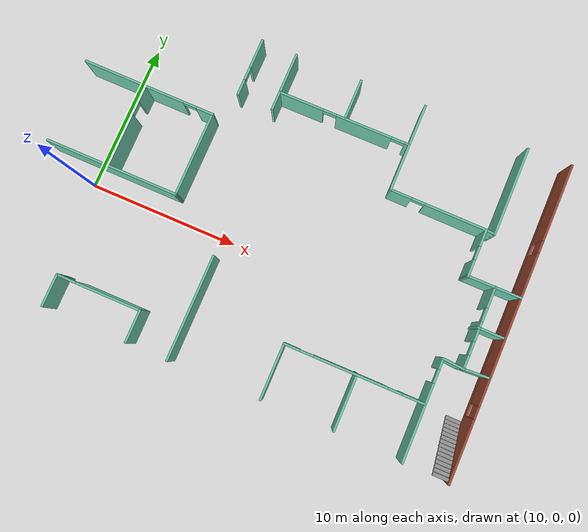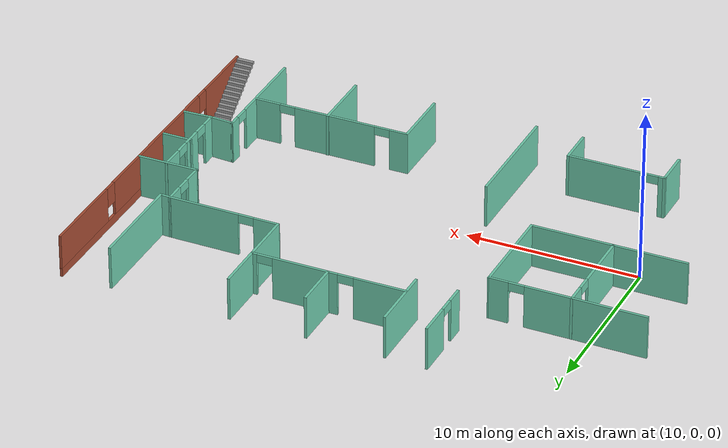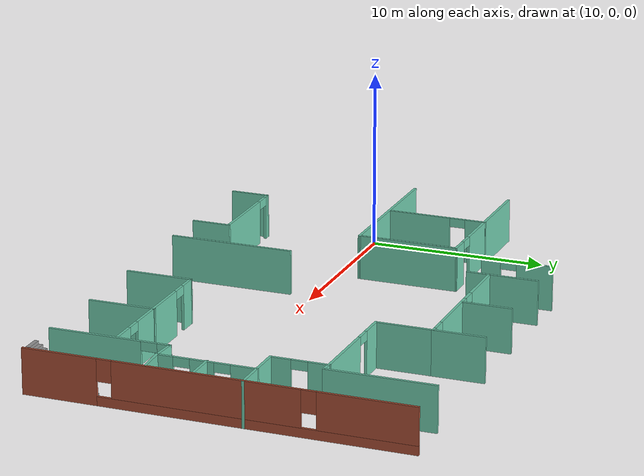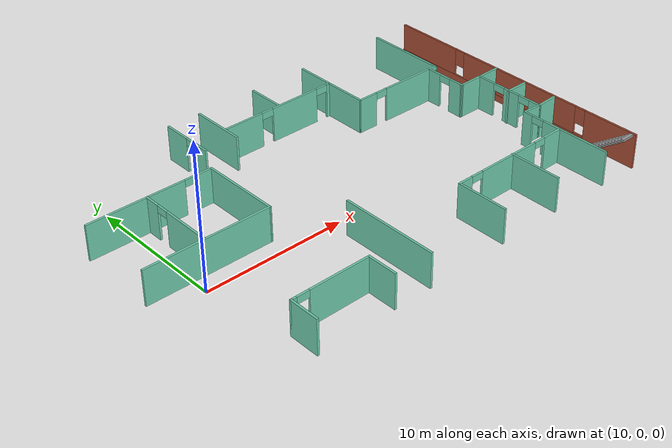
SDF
<sdf version="1.7">
 <model name="building">
  <pose>10.6748 2.21075 0 0 -0 0</pose>
  <link name="Stairs_1">
   <visual name="Stairs_1_Visual_0">
    <pose>26.4663 -7.00281 0.083333 0 -0 0</pose>
    <geometry><box><size>1 0.233333 0.166667</size></box></geometry>
    <material>
     <script><uri>file://media/materials/scripts/gazebo.material</uri><name>Gazebo/Grey</name></script>
     <ambient>0 0 0 1</ambient>
    </material>
    <meta><layer>0</layer></meta>
   </visual>
   <collision name="Stairs_1_Collision_0">
    <geometry><box><size>1 0.233333 0.166667</size></box></geometry>
    <pose>26.4663 -7.00281 0.083333 0 -0 0</pose>
   </collision>
   <visual name="Stairs_1_Visual_1">
    <pose>26.4663 -7.23614 0.25 0 -0 0</pose>
    <geometry><box><size>1 0.233333 0.166667</size></box></geometry>
    <material>
     <script><uri>file://media/materials/scripts/gazebo.material</uri><name>Gazebo/Grey</name></script>
     <ambient>0 0 0 1</ambient>
    </material>
    <meta><layer>0</layer></meta>
   </visual>
   <collision name="Stairs_1_Collision_1">
    <geometry><box><size>1 0.233333 0.166667</size></box></geometry>
    <pose>26.4663 -7.23614 0.25 0 -0 0</pose>
   </collision>
   <visual name="Stairs_1_Visual_2">
    <pose>26.4663 -7.46948 0.416667 0 -0 0</pose>
    <geometry><box><size>1 0.233333 0.166667</size></box></geometry>
    <material>
     <script><uri>file://media/materials/scripts/gazebo.material</uri><name>Gazebo/Grey</name></script>
     <ambient>0 0 0 1</ambient>
    </material>
    <meta><layer>0</layer></meta>
   </visual>
   <collision name="Stairs_1_Collision_2">
    <geometry><box><size>1 0.233333 0.166667</size></box></geometry>
    <pose>26.4663 -7.46948 0.416667 0 -0 0</pose>
   </collision>
   <visual name="Stairs_1_Visual_3">
    <pose>26.4663 -7.70281 0.583333 0 -0 0</pose>
    <geometry><box><size>1 0.233333 0.166667</size></box></geometry>
    <material>
     <script><uri>file://media/materials/scripts/gazebo.material</uri><name>Gazebo/Grey</name></script>
     <ambient>0 0 0 1</ambient>
    </material>
    <meta><layer>0</layer></meta>
   </visual>
   <collision name="Stairs_1_Collision_3">
    <geometry><box><size>1 0.233333 0.166667</size></box></geometry>
    <pose>26.4663 -7.70281 0.583333 0 -0 0</pose>
   </collision>
   <visual name="Stairs_1_Visual_4">
    <pose>26.4663 -7.93614 0.75 0 -0 0</pose>
    <geometry><box><size>1 0.233333 0.166667</size></box></geometry>
    <material>
     <script><uri>file://media/materials/scripts/gazebo.material</uri><name>Gazebo/Grey</name></script>
     <ambient>0 0 0 1</ambient>
    </material>
    <meta><layer>0</layer></meta>
   </visual>
   <collision name="Stairs_1_Collision_4">
    <geometry><box><size>1 0.233333 0.166667</size></box></geometry>
    <pose>26.4663 -7.93614 0.75 0 -0 0</pose>
   </collision>
   <visual name="Stairs_1_Visual_5">
    <pose>26.4663 -8.16948 0.916667 0 -0 0</pose>
    <geometry><box><size>1 0.233333 0.166667</size></box></geometry>
    <material>
     <script><uri>file://media/materials/scripts/gazebo.material</uri><name>Gazebo/Grey</name></script>
     <ambient>0 0 0 1</ambient>
    </material>
    <meta><layer>0</layer></meta>
   </visual>
   <collision name="Stairs_1_Collision_5">
    <geometry><box><size>1 0.233333 0.166667</size></box></geometry>
    <pose>26.4663 -8.16948 0.916667 0 -0 0</pose>
   </collision>
   <visual name="Stairs_1_Visual_6">
    <pose>26.4663 -8.40281 1.08333 0 -0 0</pose>
    <geometry><box><size>1 0.233333 0.166667</size></box></geometry>
    <material>
     <script><uri>file://media/materials/scripts/gazebo.material</uri><name>Gazebo/Grey</name></script>
     <ambient>0 0 0 1</ambient>
    </material>
    <meta><layer>0</layer></meta>
   </visual>
   <collision name="Stairs_1_Collision_6">
    <geometry><box><size>1 0.233333 0.166667</size></box></geometry>
    <pose>26.4663 -8.40281 1.08333 0 -0 0</pose>
   </collision>
   <visual name="Stairs_1_Visual_7">
    <pose>26.4663 -8.63614 1.25 0 -0 0</pose>
    <geometry><box><size>1 0.233333 0.166667</size></box></geometry>
    <material>
     <script><uri>file://media/materials/scripts/gazebo.material</uri><name>Gazebo/Grey</name></script>
     <ambient>0 0 0 1</ambient>
    </material>
    <meta><layer>0</layer></meta>
   </visual>
   <collision name="Stairs_1_Collision_7">
    <geometry><box><size>1 0.233333 0.166667</size></box></geometry>
    <pose>26.4663 -8.63614 1.25 0 -0 0</pose>
   </collision>
   <visual name="Stairs_1_Visual_8">
    <pose>26.4663 -8.86948 1.41667 0 -0 0</pose>
    <geometry><box><size>1 0.233333 0.166667</size></box></geometry>
    <material>
     <script><uri>file://media/materials/scripts/gazebo.material</uri><name>Gazebo/Grey</name></script>
     <ambient>0 0 0 1</ambient>
    </material>
    <meta><layer>0</layer></meta>
   </visual>
   <collision name="Stairs_1_Collision_8">
    <geometry><box><size>1 0.233333 0.166667</size></box></geometry>
    <pose>26.4663 -8.86948 1.41667 0 -0 0</pose>
   </collision>
   <visual name="Stairs_1_Visual_9">
    <pose>26.4663 -9.10281 1.58333 0 -0 0</pose>
    <geometry><box><size>1 0.233333 0.166667</size></box></geometry>
    <material>
     <script><uri>file://media/materials/scripts/gazebo.material</uri><name>Gazebo/Grey</name></script>
     <ambient>0 0 0 1</ambient>
    </material>
    <meta><layer>0</layer></meta>
   </visual>
   <collision name="Stairs_1_Collision_9">
    <geometry><box><size>1 0.233333 0.166667</size></box></geometry>
    <pose>26.4663 -9.10281 1.58333 0 -0 0</pose>
   </collision>
   <visual name="Stairs_1_Visual_10">
    <pose>26.4663 -9.33614 1.75 0 -0 0</pose>
    <geometry><box><size>1 0.233333 0.166667</size></box></geometry>
    <material>
     <script><uri>file://media/materials/scripts/gazebo.material</uri><name>Gazebo/Grey</name></script>
     <ambient>0 0 0 1</ambient>
    </material>
    <meta><layer>0</layer></meta>
   </visual>
   <collision name="Stairs_1_Collision_10">
    <geometry><box><size>1 0.233333 0.166667</size></box></geometry>
    <pose>26.4663 -9.33614 1.75 0 -0 0</pose>
   </collision>
   <visual name="Stairs_1_Visual_11">
    <pose>26.4663 -9.56948 1.91667 0 -0 0</pose>
    <geometry><box><size>1 0.233333 0.166667</size></box></geometry>
    <material>
     <script><uri>file://media/materials/scripts/gazebo.material</uri><name>Gazebo/Grey</name></script>
     <ambient>0 0 0 1</ambient>
    </material>
    <meta><layer>0</layer></meta>
   </visual>
   <collision name="Stairs_1_Collision_11">
    <geometry><box><size>1 0.233333 0.166667</size></box></geometry>
    <pose>26.4663 -9.56948 1.91667 0 -0 0</pose>
   </collision>
   <visual name="Stairs_1_Visual_12">
    <pose>26.4663 -9.80281 2.08333 0 -0 0</pose>
    <geometry><box><size>1 0.233333 0.166667</size></box></geometry>
    <material>
     <script><uri>file://media/materials/scripts/gazebo.material</uri><name>Gazebo/Grey</name></script>
     <ambient>0 0 0 1</ambient>
    </material>
    <meta><layer>0</layer></meta>
   </visual>
   <collision name="Stairs_1_Collision_12">
    <geometry><box><size>1 0.233333 0.166667</size></box></geometry>
    <pose>26.4663 -9.80281 2.08333 0 -0 0</pose>
   </collision>
   <visual name="Stairs_1_Visual_13">
    <pose>26.4663 -10.0361 2.25 0 -0 0</pose>
    <geometry><box><size>1 0.233333 0.166667</size></box></geometry>
    <material>
     <script><uri>file://media/materials/scripts/gazebo.material</uri><name>Gazebo/Grey</name></script>
     <ambient>0 0 0 1</ambient>
    </material>
    <meta><layer>0</layer></meta>
   </visual>
   <collision name="Stairs_1_Collision_13">
    <geometry><box><size>1 0.233333 0.166667</size></box></geometry>
    <pose>26.4663 -10.0361 2.25 0 -0 0</pose>
   </collision>
   <visual name="Stairs_1_Visual_14">
    <pose>26.4663 -10.2695 2.41667 0 -0 0</pose>
    <geometry><box><size>1 0.233333 0.166667</size></box></geometry>
    <material>
     <script><uri>file://media/materials/scripts/gazebo.material</uri><name>Gazebo/Grey</name></script>
     <ambient>0 0 0 1</ambient>
    </material>
    <meta><layer>0</layer></meta>
   </visual>
   <collision name="Stairs_1_Collision_14">
    <geometry><box><size>1 0.233333 0.166667</size></box></geometry>
    <pose>26.4663 -10.2695 2.41667 0 -0 0</pose>
   </collision>
  </link>
  <link name="Wall_23">
   <collision name="Wall_23_Collision">
    <geometry><box><size>7 0.15 2.5</size></box></geometry>
    <pose>0 0 1.25 0 -0 0</pose>
   </collision>
   <visual name="Wall_23_Visual">
    <pose>0 0 1.25 0 -0 0</pose>
    <geometry><box><size>7 0.15 2.5</size></box></geometry>
    <material>
     <script><uri>file://media/materials/scripts/gazebo.material</uri><name>Gazebo/Grey</name></script>
     <ambient>0.435294 0.796078 0.67451 1</ambient>
    </material>
    <meta><layer>0</layer></meta>
   </visual>
   <pose>8.80491 -6.99311 0 0 -0 -1.5708</pose>
  </link>
  <link name="Wall_3">
   <pose>27.1115 -0.030347 0 0 -0 1.56785</pose>
   <visual name="Wall_3_Visual_0">
    <pose>-8.45604 0 1.25 0 -0 0</pose>
    <geometry><box><size>4.11386 0.15 2.5</size></box></geometry>
    <material>
     <script><uri>file://media/materials/scripts/gazebo.material</uri><name>Gazebo/Bricks</name></script>
     <ambient>1 1 1 1</ambient>
    </material>
    <meta><layer>0</layer></meta>
   </visual>
   <collision name="Wall_3_Collision_0">
    <geometry><box><size>4.11386 0.15 2.5</size></box></geometry>
    <pose>-8.45604 0 1.25 0 -0 0</pose>
   </collision>
   <visual name="Wall_3_Visual_1">
    <pose>2.05693 0 0.25 0 -0 0</pose>
    <geometry><box><size>16.9121 0.15 0.5</size></box></geometry>
    <material>
     <script><uri>file://media/materials/scripts/gazebo.material</uri><name>Gazebo/Bricks</name></script>
     <ambient>1 1 1 1</ambient>
    </material>
    <meta><layer>0</layer></meta>
   </visual>
   <collision name="Wall_3_Collision_1">
    <geometry><box><size>16.9121 0.15 0.5</size></box></geometry>
    <pose>2.05693 0 0.25 0 -0 0</pose>
   </collision>
   <visual name="Wall_3_Visual_2">
    <pose>-0.561603 0 1.5 0 -0 0</pose>
    <geometry><box><size>10.075 0.15 2</size></box></geometry>
    <material>
     <script><uri>file://media/materials/scripts/gazebo.material</uri><name>Gazebo/Bricks</name></script>
     <ambient>1 1 1 1</ambient>
    </material>
    <meta><layer>0</layer></meta>
   </visual>
   <collision name="Wall_3_Collision_2">
    <geometry><box><size>10.075 0.15 2</size></box></geometry>
    <pose>-0.561603 0 1.5 0 -0 0</pose>
   </collision>
   <visual name="Wall_3_Visual_3">
    <pose>7.89443 0 1.5 0 -0 0</pose>
    <geometry><box><size>5.23707 0.15 2</size></box></geometry>
    <material>
     <script><uri>file://media/materials/scripts/gazebo.material</uri><name>Gazebo/Bricks</name></script>
     <ambient>1 1 1 1</ambient>
    </material>
    <meta><layer>0</layer></meta>
   </visual>
   <collision name="Wall_3_Collision_3">
    <geometry><box><size>5.23707 0.15 2</size></box></geometry>
    <pose>7.89443 0 1.5 0 -0 0</pose>
   </collision>
   <visual name="Wall_3_Visual_4">
    <pose>-5.9991 0 1.9 0 -0 0</pose>
    <geometry><box><size>0.8 0.15 1.2</size></box></geometry>
    <material>
     <script><uri>file://media/materials/scripts/gazebo.material</uri><name>Gazebo/Bricks</name></script>
     <ambient>1 1 1 1</ambient>
    </material>
    <meta><layer>0</layer></meta>
   </visual>
   <collision name="Wall_3_Collision_4">
    <geometry><box><size>0.8 0.15 1.2</size></box></geometry>
    <pose>-5.9991 0 1.9 0 -0 0</pose>
   </collision>
   <visual name="Wall_3_Visual_5">
    <pose>4.8759 0 1.9 0 -0 0</pose>
    <geometry><box><size>0.8 0.15 1.2</size></box></geometry>
    <material>
     <script><uri>file://media/materials/scripts/gazebo.material</uri><name>Gazebo/Bricks</name></script>
     <ambient>1 1 1 1</ambient>
    </material>
    <meta><layer>0</layer></meta>
   </visual>
   <collision name="Wall_3_Collision_5">
    <geometry><box><size>0.8 0.15 1.2</size></box></geometry>
    <pose>4.8759 0 1.9 0 -0 0</pose>
   </collision>
  </link>
  <link name="Wall_30">
   <collision name="Wall_30_Collision">
    <geometry><box><size>4 0.15 2.5</size></box></geometry>
    <pose>0 0 1.25 0 -0 0</pose>
   </collision>
   <visual name="Wall_30_Visual">
    <pose>0 0 1.25 0 -0 0</pose>
    <geometry><box><size>4 0.15 2.5</size></box></geometry>
    <material>
     <script><uri>file://media/materials/scripts/gazebo.material</uri><name>Gazebo/Grey</name></script>
     <ambient>0.435294 0.796078 0.67451 1</ambient>
    </material>
    <meta><layer>0</layer></meta>
   </visual>
   <pose>8.40491 8.40833 0 0 -0 1.5708</pose>
  </link>
  <link name="Wall_43">
   <collision name="Wall_43_Collision">
    <geometry><box><size>8.98592 0.15 2.5</size></box></geometry>
    <pose>0 0 1.25 0 -0 0</pose>
   </collision>
   <visual name="Wall_43_Visual">
    <pose>0 0 1.25 0 -0 0</pose>
    <geometry><box><size>8.98592 0.15 2.5</size></box></geometry>
    <material>
     <script><uri>file://media/materials/scripts/gazebo.material</uri><name>Gazebo/Grey</name></script>
     <ambient>0.435294 0.796078 0.67451 1</ambient>
    </material>
    <meta><layer>0</layer></meta>
   </visual>
   <pose>0.640263 -0.917568 0 0 -0 -0.003384</pose>
  </link>
  <link name="Wall_44">
   <collision name="Wall_44_Collision">
    <geometry><box><size>5.75 0.15 2.5</size></box></geometry>
    <pose>0 0 1.25 0 -0 0</pose>
   </collision>
   <visual name="Wall_44_Visual">
    <pose>0 0 1.25 0 -0 0</pose>
    <geometry><box><size>5.75 0.15 2.5</size></box></geometry>
    <material>
     <script><uri>file://media/materials/scripts/gazebo.material</uri><name>Gazebo/Grey</name></script>
     <ambient>0.435294 0.796078 0.67451 1</ambient>
    </material>
    <meta><layer>0</layer></meta>
   </visual>
   <pose>5.0582 1.86748 0 0 -0 1.5708</pose>
  </link>
  <link name="Wall_45">
   <pose>0.640263 4.70266 0 0 -0 3.13363</pose>
   <visual name="Wall_45_Visual_0">
    <pose>-3.9058 0 1.25 0 -0 0</pose>
    <geometry><box><size>1.17456 0.15 2.5</size></box></geometry>
    <material>
     <script><uri>file://media/materials/scripts/gazebo.material</uri><name>Gazebo/Grey</name></script>
     <ambient>0.435294 0.796078 0.67451 1</ambient>
    </material>
    <meta><layer>0</layer></meta>
   </visual>
   <collision name="Wall_45_Collision_0">
    <geometry><box><size>1.17456 0.15 2.5</size></box></geometry>
    <pose>-3.9058 0 1.25 0 -0 0</pose>
   </collision>
   <visual name="Wall_45_Visual_1">
    <pose>1.03728 0 1.25 0 -0 0</pose>
    <geometry><box><size>6.91159 0.15 2.5</size></box></geometry>
    <material>
     <script><uri>file://media/materials/scripts/gazebo.material</uri><name>Gazebo/Grey</name></script>
     <ambient>0.435294 0.796078 0.67451 1</ambient>
    </material>
    <meta><layer>0</layer></meta>
   </visual>
   <collision name="Wall_45_Collision_1">
    <geometry><box><size>6.91159 0.15 2.5</size></box></geometry>
    <pose>1.03728 0 1.25 0 -0 0</pose>
   </collision>
   <visual name="Wall_45_Visual_2">
    <pose>-2.86852 0 2.25 0 -0 0</pose>
    <geometry><box><size>0.9 0.15 0.5</size></box></geometry>
    <material>
     <script><uri>file://media/materials/scripts/gazebo.material</uri><name>Gazebo/Grey</name></script>
     <ambient>0.435294 0.796078 0.67451 1</ambient>
    </material>
    <meta><layer>0</layer></meta>
   </visual>
   <collision name="Wall_45_Collision_2">
    <geometry><box><size>0.9 0.15 0.5</size></box></geometry>
    <pose>-2.86852 0 2.25 0 -0 0</pose>
   </collision>
  </link>
  <link name="Wall_48">
   <pose>0.392243 1.91276 0 0 -0 -1.5708</pose>
   <visual name="Wall_48_Visual_0">
    <pose>-2.27713 0 1.25 0 -0 0</pose>
    <geometry><box><size>1.19574 0.15 2.5</size></box></geometry>
    <material>
     <script><uri>file://media/materials/scripts/gazebo.material</uri><name>Gazebo/Grey</name></script>
     <ambient>0.435294 0.796078 0.67451 1</ambient>
    </material>
    <meta><layer>0</layer></meta>
   </visual>
   <collision name="Wall_48_Collision_0">
    <geometry><box><size>1.19574 0.15 2.5</size></box></geometry>
    <pose>-2.27713 0 1.25 0 -0 0</pose>
   </collision>
   <visual name="Wall_48_Visual_1">
    <pose>1.04787 0 1.25 0 -0 0</pose>
    <geometry><box><size>3.65426 0.15 2.5</size></box></geometry>
    <material>
     <script><uri>file://media/materials/scripts/gazebo.material</uri><name>Gazebo/Grey</name></script>
     <ambient>0.435294 0.796078 0.67451 1</ambient>
    </material>
    <meta><layer>0</layer></meta>
   </visual>
   <collision name="Wall_48_Collision_1">
    <geometry><box><size>3.65426 0.15 2.5</size></box></geometry>
    <pose>1.04787 0 1.25 0 -0 0</pose>
   </collision>
   <visual name="Wall_48_Visual_2">
    <pose>-1.22926 0 2.25 0 -0 0</pose>
    <geometry><box><size>0.9 0.15 0.5</size></box></geometry>
    <material>
     <script><uri>file://media/materials/scripts/gazebo.material</uri><name>Gazebo/Grey</name></script>
     <ambient>0.435294 0.796078 0.67451 1</ambient>
    </material>
    <meta><layer>0</layer></meta>
   </visual>
   <collision name="Wall_48_Collision_2">
    <geometry><box><size>0.9 0.15 0.5</size></box></geometry>
    <pose>-1.22926 0 2.25 0 -0 0</pose>
   </collision>
  </link>
  <link name="Wall_50">
   <collision name="Wall_50_Collision">
    <geometry><box><size>6 0.15 2.5</size></box></geometry>
    <pose>0 0 1.25 0 -0 0</pose>
   </collision>
   <visual name="Wall_50_Visual">
    <pose>0 0 1.25 0 -0 0</pose>
    <geometry><box><size>6 0.15 2.5</size></box></geometry>
    <material>
     <script><uri>file://media/materials/scripts/gazebo.material</uri><name>Gazebo/Grey</name></script>
     <ambient>0.435294 0.796078 0.67451 1</ambient>
    </material>
    <meta><layer>0</layer></meta>
   </visual>
   <pose>24.2373 7.41046 0 0 -0 -1.5708</pose>
  </link>
  <link name="Wall_51">
   <collision name="Wall_51_Collision">
    <geometry><box><size>0.660495 0.15 2.5</size></box></geometry>
    <pose>0 0 1.25 0 -0 0</pose>
   </collision>
   <visual name="Wall_51_Visual">
    <pose>0 0 1.25 0 -0 0</pose>
    <geometry><box><size>0.660495 0.15 2.5</size></box></geometry>
    <material>
     <script><uri>file://media/materials/scripts/gazebo.material</uri><name>Gazebo/Grey</name></script>
     <ambient>0.435294 0.796078 0.67451 1</ambient>
    </material>
    <meta><layer>0</layer></meta>
   </visual>
   <pose>23.9215 4.50286 0 0 -0 3.07339</pose>
  </link>
  <link name="Wall_52">
   <pose>23.6668 2.97025 0 0 -0 -1.5708</pose>
   <visual name="Wall_52_Visual_0">
    <pose>-1.03865 0 1.25 0 -0 0</pose>
    <geometry><box><size>1.17271 0.15 2.5</size></box></geometry>
    <material>
     <script><uri>file://media/materials/scripts/gazebo.material</uri><name>Gazebo/Grey</name></script>
     <ambient>0.435294 0.796078 0.67451 1</ambient>
    </material>
    <meta><layer>0</layer></meta>
   </visual>
   <collision name="Wall_52_Collision_0">
    <geometry><box><size>1.17271 0.15 2.5</size></box></geometry>
    <pose>-1.03865 0 1.25 0 -0 0</pose>
   </collision>
   <visual name="Wall_52_Visual_1">
    <pose>1.03635 0 1.25 0 -0 0</pose>
    <geometry><box><size>1.17729 0.15 2.5</size></box></geometry>
    <material>
     <script><uri>file://media/materials/scripts/gazebo.material</uri><name>Gazebo/Grey</name></script>
     <ambient>0.435294 0.796078 0.67451 1</ambient>
    </material>
    <meta><layer>0</layer></meta>
   </visual>
   <collision name="Wall_52_Collision_1">
    <geometry><box><size>1.17729 0.15 2.5</size></box></geometry>
    <pose>1.03635 0 1.25 0 -0 0</pose>
   </collision>
   <visual name="Wall_52_Visual_2">
    <pose>-0.002295 0 2.25 0 -0 0</pose>
    <geometry><box><size>0.9 0.15 0.5</size></box></geometry>
    <material>
     <script><uri>file://media/materials/scripts/gazebo.material</uri><name>Gazebo/Grey</name></script>
     <ambient>0.435294 0.796078 0.67451 1</ambient>
    </material>
    <meta><layer>0</layer></meta>
   </visual>
   <collision name="Wall_52_Collision_2">
    <geometry><box><size>0.9 0.15 0.5</size></box></geometry>
    <pose>-0.002295 0 2.25 0 -0 0</pose>
   </collision>
  </link>
  <link name="Wall_53">
   <collision name="Wall_53_Collision">
    <geometry><box><size>3.60342 0.15 2.5</size></box></geometry>
    <pose>0 0 1.25 0 -0 0</pose>
   </collision>
   <visual name="Wall_53_Visual">
    <pose>0 0 1.25 0 -0 0</pose>
    <geometry><box><size>3.60342 0.15 2.5</size></box></geometry>
    <material>
     <script><uri>file://media/materials/scripts/gazebo.material</uri><name>Gazebo/Grey</name></script>
     <ambient>0.435294 0.796078 0.67451 1</ambient>
    </material>
    <meta><layer>0</layer></meta>
   </visual>
   <pose>25.3935 1.42553 0 0 -0 0.003057</pose>
  </link>
  <link name="Wall_57">
   <pose>6.01346 8.46421 0 0 -0 -1.5708</pose>
   <visual name="Wall_57_Visual_0">
    <pose>-0.990491 0 1.25 0 -0 0</pose>
    <geometry><box><size>2.01902 0.15 2.5</size></box></geometry>
    <material>
     <script><uri>file://media/materials/scripts/gazebo.material</uri><name>Gazebo/Grey</name></script>
     <ambient>0.435294 0.796078 0.67451 1</ambient>
    </material>
    <meta><layer>0</layer></meta>
   </visual>
   <collision name="Wall_57_Collision_0">
    <geometry><box><size>2.01902 0.15 2.5</size></box></geometry>
    <pose>-0.990491 0 1.25 0 -0 0</pose>
   </collision>
   <visual name="Wall_57_Visual_1">
    <pose>1.45951 0 1.25 0 -0 0</pose>
    <geometry><box><size>1.08098 0.15 2.5</size></box></geometry>
    <material>
     <script><uri>file://media/materials/scripts/gazebo.material</uri><name>Gazebo/Grey</name></script>
     <ambient>0.435294 0.796078 0.67451 1</ambient>
    </material>
    <meta><layer>0</layer></meta>
   </visual>
   <collision name="Wall_57_Collision_1">
    <geometry><box><size>1.08098 0.15 2.5</size></box></geometry>
    <pose>1.45951 0 1.25 0 -0 0</pose>
   </collision>
   <visual name="Wall_57_Visual_2">
    <pose>0.469018 0 2.25 0 -0 0</pose>
    <geometry><box><size>0.9 0.15 0.5</size></box></geometry>
    <material>
     <script><uri>file://media/materials/scripts/gazebo.material</uri><name>Gazebo/Grey</name></script>
     <ambient>0.435294 0.796078 0.67451 1</ambient>
    </material>
    <meta><layer>0</layer></meta>
   </visual>
   <collision name="Wall_57_Collision_2">
    <geometry><box><size>0.9 0.15 0.5</size></box></geometry>
    <pose>0.469018 0 2.25 0 -0 0</pose>
   </collision>
  </link>
  <link name="Wall_63">
   <collision name="Wall_63_Collision">
    <geometry><box><size>2.21276 0.15 2.5</size></box></geometry>
    <pose>0 0 1.25 0 -0 0</pose>
   </collision>
   <visual name="Wall_63_Visual">
    <pose>0 0 1.25 0 -0 0</pose>
    <geometry><box><size>2.21276 0.15 2.5</size></box></geometry>
    <material>
     <script><uri>file://media/materials/scripts/gazebo.material</uri><name>Gazebo/Grey</name></script>
     <ambient>0.435294 0.796078 0.67451 1</ambient>
    </material>
    <meta><layer>0</layer></meta>
   </visual>
   <pose>0.450535 -9.36843 0 0 -0 1.5708</pose>
  </link>
  <link name="Wall_64">
   <pose>3.25053 -8.33714 0 0 -0 0</pose>
   <visual name="Wall_64_Visual_0">
    <pose>-2.6635 0 1.25 0 -0 0</pose>
    <geometry><box><size>0.423007 0.15 2.5</size></box></geometry>
    <material>
     <script><uri>file://media/materials/scripts/gazebo.material</uri><name>Gazebo/Grey</name></script>
     <ambient>0.435294 0.796078 0.67451 1</ambient>
    </material>
    <meta><layer>0</layer></meta>
   </visual>
   <collision name="Wall_64_Collision_0">
    <geometry><box><size>0.423007 0.15 2.5</size></box></geometry>
    <pose>-2.6635 0 1.25 0 -0 0</pose>
   </collision>
   <visual name="Wall_64_Visual_1">
    <pose>0.661503 0 1.25 0 -0 0</pose>
    <geometry><box><size>4.42699 0.15 2.5</size></box></geometry>
    <material>
     <script><uri>file://media/materials/scripts/gazebo.material</uri><name>Gazebo/Grey</name></script>
     <ambient>0.435294 0.796078 0.67451 1</ambient>
    </material>
    <meta><layer>0</layer></meta>
   </visual>
   <collision name="Wall_64_Collision_1">
    <geometry><box><size>4.42699 0.15 2.5</size></box></geometry>
    <pose>0.661503 0 1.25 0 -0 0</pose>
   </collision>
   <visual name="Wall_64_Visual_2">
    <pose>-2.00199 0 2.25 0 -0 0</pose>
    <geometry><box><size>0.9 0.15 0.5</size></box></geometry>
    <material>
     <script><uri>file://media/materials/scripts/gazebo.material</uri><name>Gazebo/Grey</name></script>
     <ambient>0.435294 0.796078 0.67451 1</ambient>
    </material>
    <meta><layer>0</layer></meta>
   </visual>
   <collision name="Wall_64_Collision_2">
    <geometry><box><size>0.9 0.15 0.5</size></box></geometry>
    <pose>-2.00199 0 2.25 0 -0 0</pose>
   </collision>
  </link>
  <link name="Wall_66">
   <collision name="Wall_66_Collision">
    <geometry><box><size>2.21276 0.15 2.5</size></box></geometry>
    <pose>0 0 1.25 0 -0 0</pose>
   </collision>
   <visual name="Wall_66_Visual">
    <pose>0 0 1.25 0 -0 0</pose>
    <geometry><box><size>2.21276 0.15 2.5</size></box></geometry>
    <material>
     <script><uri>file://media/materials/scripts/gazebo.material</uri><name>Gazebo/Grey</name></script>
     <ambient>0.435294 0.796078 0.67451 1</ambient>
    </material>
    <meta><layer>0</layer></meta>
   </visual>
   <pose>6.05053 -9.36843 0 0 -0 -1.5708</pose>
  </link>
  <link name="Wall_68">
   <pose>12.8387 7.67528 0 0 -0 0</pose>
   <visual name="Wall_68_Visual_0">
    <pose>-2.96431 0 1.25 0 -0 0</pose>
    <geometry><box><size>3.07138 0.15 2.5</size></box></geometry>
    <material>
     <script><uri>file://media/materials/scripts/gazebo.material</uri><name>Gazebo/Grey</name></script>
     <ambient>0.435294 0.796078 0.67451 1</ambient>
    </material>
    <meta><layer>0</layer></meta>
   </visual>
   <collision name="Wall_68_Collision_0">
    <geometry><box><size>3.07138 0.15 2.5</size></box></geometry>
    <pose>-2.96431 0 1.25 0 -0 0</pose>
   </collision>
   <visual name="Wall_68_Visual_1">
    <pose>1.34874 0 1.25 0 -0 0</pose>
    <geometry><box><size>3.75472 0.15 2.5</size></box></geometry>
    <material>
     <script><uri>file://media/materials/scripts/gazebo.material</uri><name>Gazebo/Grey</name></script>
     <ambient>0.435294 0.796078 0.67451 1</ambient>
    </material>
    <meta><layer>0</layer></meta>
   </visual>
   <collision name="Wall_68_Collision_1">
    <geometry><box><size>3.75472 0.15 2.5</size></box></geometry>
    <pose>1.34874 0 1.25 0 -0 0</pose>
   </collision>
   <visual name="Wall_68_Visual_2">
    <pose>4.31305 0 1.25 0 -0 0</pose>
    <geometry><box><size>0.373898 0.15 2.5</size></box></geometry>
    <material>
     <script><uri>file://media/materials/scripts/gazebo.material</uri><name>Gazebo/Grey</name></script>
     <ambient>0.435294 0.796078 0.67451 1</ambient>
    </material>
    <meta><layer>0</layer></meta>
   </visual>
   <collision name="Wall_68_Collision_2">
    <geometry><box><size>0.373898 0.15 2.5</size></box></geometry>
    <pose>4.31305 0 1.25 0 -0 0</pose>
   </collision>
   <visual name="Wall_68_Visual_3">
    <pose>-0.978617 0 2.25 0 -0 0</pose>
    <geometry><box><size>0.9 0.15 0.5</size></box></geometry>
    <material>
     <script><uri>file://media/materials/scripts/gazebo.material</uri><name>Gazebo/Grey</name></script>
     <ambient>0.435294 0.796078 0.67451 1</ambient>
    </material>
    <meta><layer>0</layer></meta>
   </visual>
   <collision name="Wall_68_Collision_3">
    <geometry><box><size>0.9 0.15 0.5</size></box></geometry>
    <pose>-0.978617 0 2.25 0 -0 0</pose>
   </collision>
   <visual name="Wall_68_Visual_4">
    <pose>3.6761 0 2.25 0 -0 0</pose>
    <geometry><box><size>0.9 0.15 0.5</size></box></geometry>
    <material>
     <script><uri>file://media/materials/scripts/gazebo.material</uri><name>Gazebo/Grey</name></script>
     <ambient>0.435294 0.796078 0.67451 1</ambient>
    </material>
    <meta><layer>0</layer></meta>
   </visual>
   <collision name="Wall_68_Collision_4">
    <geometry><box><size>0.9 0.15 0.5</size></box></geometry>
    <pose>3.6761 0 2.25 0 -0 0</pose>
   </collision>
  </link>
  <link name="Wall_69">
   <collision name="Wall_69_Collision">
    <geometry><box><size>3.25 0.15 2.5</size></box></geometry>
    <pose>0 0 1.25 0 -0 0</pose>
   </collision>
   <visual name="Wall_69_Visual">
    <pose>0 0 1.25 0 -0 0</pose>
    <geometry><box><size>3.25 0.15 2.5</size></box></geometry>
    <material>
     <script><uri>file://media/materials/scripts/gazebo.material</uri><name>Gazebo/Grey</name></script>
     <ambient>0.435294 0.796078 0.67451 1</ambient>
    </material>
    <meta><layer>0</layer></meta>
   </visual>
   <pose>17.2637 6.12528 0 0 -0 -1.5708</pose>
  </link>
  <link name="Wall_70">
   <pose>20.4653 4.54777 0 0 -0 -0.008593</pose>
   <visual name="Wall_70_Visual_0">
    <pose>-2.5288 0 1.25 0 -0 0</pose>
    <geometry><box><size>1.49578 0.15 2.5</size></box></geometry>
    <material>
     <script><uri>file://media/materials/scripts/gazebo.material</uri><name>Gazebo/Grey</name></script>
     <ambient>0.435294 0.796078 0.67451 1</ambient>
    </material>
    <meta><layer>0</layer></meta>
   </visual>
   <collision name="Wall_70_Collision_0">
    <geometry><box><size>1.49578 0.15 2.5</size></box></geometry>
    <pose>-2.5288 0 1.25 0 -0 0</pose>
   </collision>
   <visual name="Wall_70_Visual_1">
    <pose>1.19789 0 1.25 0 -0 0</pose>
    <geometry><box><size>4.1576 0.15 2.5</size></box></geometry>
    <material>
     <script><uri>file://media/materials/scripts/gazebo.material</uri><name>Gazebo/Grey</name></script>
     <ambient>0.435294 0.796078 0.67451 1</ambient>
    </material>
    <meta><layer>0</layer></meta>
   </visual>
   <collision name="Wall_70_Collision_1">
    <geometry><box><size>4.1576 0.15 2.5</size></box></geometry>
    <pose>1.19789 0 1.25 0 -0 0</pose>
   </collision>
   <visual name="Wall_70_Visual_2">
    <pose>-1.33091 0 2.25 0 -0 0</pose>
    <geometry><box><size>0.9 0.15 0.5</size></box></geometry>
    <material>
     <script><uri>file://media/materials/scripts/gazebo.material</uri><name>Gazebo/Grey</name></script>
     <ambient>0.435294 0.796078 0.67451 1</ambient>
    </material>
    <meta><layer>0</layer></meta>
   </visual>
   <collision name="Wall_70_Collision_2">
    <geometry><box><size>0.9 0.15 0.5</size></box></geometry>
    <pose>-1.33091 0 2.25 0 -0 0</pose>
   </collision>
  </link>
  <link name="Wall_72">
   <collision name="Wall_72_Collision">
    <geometry><box><size>2.75 0.15 2.5</size></box></geometry>
    <pose>0 0 1.25 0 -0 0</pose>
   </collision>
   <visual name="Wall_72_Visual">
    <pose>0 0 1.25 0 -0 0</pose>
    <geometry><box><size>2.75 0.15 2.5</size></box></geometry>
    <material>
     <script><uri>file://media/materials/scripts/gazebo.material</uri><name>Gazebo/Grey</name></script>
     <ambient>0.435294 0.796078 0.67451 1</ambient>
    </material>
    <meta><layer>0</layer></meta>
   </visual>
   <pose>12.8766 9.05724 0 0 -0 -1.5708</pose>
  </link>
  <link name="Wall_74">
   <collision name="Wall_74_Collision">
    <geometry><box><size>2.88547 0.15 2.5</size></box></geometry>
    <pose>0 0 1.25 0 -0 0</pose>
   </collision>
   <visual name="Wall_74_Visual">
    <pose>0 0 1.25 0 -0 0</pose>
    <geometry><box><size>2.88547 0.15 2.5</size></box></geometry>
    <material>
     <script><uri>file://media/materials/scripts/gazebo.material</uri><name>Gazebo/Grey</name></script>
     <ambient>0.435294 0.796078 0.67451 1</ambient>
    </material>
    <meta><layer>0</layer></meta>
   </visual>
   <pose>17.2638 9.04301 0 0 -0 -1.57085</pose>
  </link>
  <link name="Wall_76">
   <pose>25.4427 -1.23872 0 0 -0 -1.5708</pose>
   <visual name="Wall_76_Visual_0">
    <pose>-2.02536 0 1.25 0 -0 0</pose>
    <geometry><box><size>1.44928 0.15 2.5</size></box></geometry>
    <material>
     <script><uri>file://media/materials/scripts/gazebo.material</uri><name>Gazebo/Grey</name></script>
     <ambient>0.435294 0.796078 0.67451 1</ambient>
    </material>
    <meta><layer>0</layer></meta>
   </visual>
   <collision name="Wall_76_Collision_0">
    <geometry><box><size>1.44928 0.15 2.5</size></box></geometry>
    <pose>-2.02536 0 1.25 0 -0 0</pose>
   </collision>
   <visual name="Wall_76_Visual_1">
    <pose>0.246084 0 1.25 0 -0 0</pose>
    <geometry><box><size>1.2936 0.15 2.5</size></box></geometry>
    <material>
     <script><uri>file://media/materials/scripts/gazebo.material</uri><name>Gazebo/Grey</name></script>
     <ambient>0.435294 0.796078 0.67451 1</ambient>
    </material>
    <meta><layer>0</layer></meta>
   </visual>
   <collision name="Wall_76_Collision_1">
    <geometry><box><size>1.2936 0.15 2.5</size></box></geometry>
    <pose>0.246084 0 1.25 0 -0 0</pose>
   </collision>
   <visual name="Wall_76_Visual_2">
    <pose>2.27144 0 1.25 0 -0 0</pose>
    <geometry><box><size>0.957115 0.15 2.5</size></box></geometry>
    <material>
     <script><uri>file://media/materials/scripts/gazebo.material</uri><name>Gazebo/Grey</name></script>
     <ambient>0.435294 0.796078 0.67451 1</ambient>
    </material>
    <meta><layer>0</layer></meta>
   </visual>
   <collision name="Wall_76_Collision_2">
    <geometry><box><size>0.957115 0.15 2.5</size></box></geometry>
    <pose>2.27144 0 1.25 0 -0 0</pose>
   </collision>
   <visual name="Wall_76_Visual_3">
    <pose>-0.850717 0 2.25 0 -0 0</pose>
    <geometry><box><size>0.9 0.15 0.5</size></box></geometry>
    <material>
     <script><uri>file://media/materials/scripts/gazebo.material</uri><name>Gazebo/Grey</name></script>
     <ambient>0.435294 0.796078 0.67451 1</ambient>
    </material>
    <meta><layer>0</layer></meta>
   </visual>
   <collision name="Wall_76_Collision_3">
    <geometry><box><size>0.9 0.15 0.5</size></box></geometry>
    <pose>-0.850717 0 2.25 0 -0 0</pose>
   </collision>
   <visual name="Wall_76_Visual_4">
    <pose>1.34289 0 2.25 0 -0 0</pose>
    <geometry><box><size>0.9 0.15 0.5</size></box></geometry>
    <material>
     <script><uri>file://media/materials/scripts/gazebo.material</uri><name>Gazebo/Grey</name></script>
     <ambient>0.435294 0.796078 0.67451 1</ambient>
    </material>
    <meta><layer>0</layer></meta>
   </visual>
   <collision name="Wall_76_Collision_4">
    <geometry><box><size>0.9 0.15 0.5</size></box></geometry>
    <pose>1.34289 0 2.25 0 -0 0</pose>
   </collision>
  </link>
  <link name="Wall_77">
   <collision name="Wall_77_Collision">
    <geometry><box><size>1.70626 0.15 2.5</size></box></geometry>
    <pose>0 0 1.25 0 -0 0</pose>
   </collision>
   <visual name="Wall_77_Visual">
    <pose>0 0 1.25 0 -0 0</pose>
    <geometry><box><size>1.70626 0.15 2.5</size></box></geometry>
    <material>
     <script><uri>file://media/materials/scripts/gazebo.material</uri><name>Gazebo/Grey</name></script>
     <ambient>0.435294 0.796078 0.67451 1</ambient>
    </material>
    <meta><layer>0</layer></meta>
   </visual>
   <pose>26.2195 -3.86719 0 0 -0 0.059825</pose>
  </link>
  <link name="Wall_79">
   <collision name="Wall_79_Collision">
    <geometry><box><size>1.44287 0.15 2.5</size></box></geometry>
    <pose>0 0 1.25 0 -0 0</pose>
   </collision>
   <visual name="Wall_79_Visual">
    <pose>0 0 1.25 0 -0 0</pose>
    <geometry><box><size>1.44287 0.15 2.5</size></box></geometry>
    <material>
     <script><uri>file://media/materials/scripts/gazebo.material</uri><name>Gazebo/Grey</name></script>
     <ambient>0.435294 0.796078 0.67451 1</ambient>
    </material>
    <meta><layer>0</layer></meta>
   </visual>
   <pose>24.798 -3.86719 0 0 -0 3.06956</pose>
  </link>
  <link name="Wall_80">
   <pose>24.0997 -7.12067 0 0 -0 -1.5708</pose>
   <visual name="Wall_80_Visual_0">
    <pose>-3.0006 0 1.25 0 -0 0</pose>
    <geometry><box><size>0.748803 0.15 2.5</size></box></geometry>
    <material>
     <script><uri>file://media/materials/scripts/gazebo.material</uri><name>Gazebo/Grey</name></script>
     <ambient>0.435294 0.796078 0.67451 1</ambient>
    </material>
    <meta><layer>0</layer></meta>
   </visual>
   <collision name="Wall_80_Collision_0">
    <geometry><box><size>0.748803 0.15 2.5</size></box></geometry>
    <pose>-3.0006 0 1.25 0 -0 0</pose>
   </collision>
   <visual name="Wall_80_Visual_1">
    <pose>0.824401 0 1.25 0 -0 0</pose>
    <geometry><box><size>5.1012 0.15 2.5</size></box></geometry>
    <material>
     <script><uri>file://media/materials/scripts/gazebo.material</uri><name>Gazebo/Grey</name></script>
     <ambient>0.435294 0.796078 0.67451 1</ambient>
    </material>
    <meta><layer>0</layer></meta>
   </visual>
   <collision name="Wall_80_Collision_1">
    <geometry><box><size>5.1012 0.15 2.5</size></box></geometry>
    <pose>0.824401 0 1.25 0 -0 0</pose>
   </collision>
   <visual name="Wall_80_Visual_2">
    <pose>-2.1762 0 2.25 0 -0 0</pose>
    <geometry><box><size>0.9 0.15 0.5</size></box></geometry>
    <material>
     <script><uri>file://media/materials/scripts/gazebo.material</uri><name>Gazebo/Grey</name></script>
     <ambient>0.435294 0.796078 0.67451 1</ambient>
    </material>
    <meta><layer>0</layer></meta>
   </visual>
   <collision name="Wall_80_Collision_2">
    <geometry><box><size>0.9 0.15 0.5</size></box></geometry>
    <pose>-2.1762 0 2.25 0 -0 0</pose>
   </collision>
  </link>
  <link name="Wall_82">
   <collision name="Wall_82_Collision">
    <geometry><box><size>3.75 0.15 2.5</size></box></geometry>
    <pose>0 0 1.25 0 -0 0</pose>
   </collision>
   <visual name="Wall_82_Visual">
    <pose>0 0 1.25 0 -0 0</pose>
    <geometry><box><size>3.75 0.15 2.5</size></box></geometry>
    <material>
     <script><uri>file://media/materials/scripts/gazebo.material</uri><name>Gazebo/Grey</name></script>
     <ambient>0.435294 0.796078 0.67451 1</ambient>
    </material>
    <meta><layer>0</layer></meta>
   </visual>
   <pose>14.9097 -8.54822 0 0 -0 1.5708</pose>
  </link>
  <link name="Wall_83">
   <pose>19.4597 -6.74822 0 0 -0 0</pose>
   <visual name="Wall_83_Visual_0">
    <pose>-4.06346 0 1.25 0 -0 0</pose>
    <geometry><box><size>1.12307 0.15 2.5</size></box></geometry>
    <material>
     <script><uri>file://media/materials/scripts/gazebo.material</uri><name>Gazebo/Grey</name></script>
     <ambient>0.435294 0.796078 0.67451 1</ambient>
    </material>
    <meta><layer>0</layer></meta>
   </visual>
   <collision name="Wall_83_Collision_0">
    <geometry><box><size>1.12307 0.15 2.5</size></box></geometry>
    <pose>-4.06346 0 1.25 0 -0 0</pose>
   </collision>
   <visual name="Wall_83_Visual_1">
    <pose>-0.189545 0 1.25 0 -0 0</pose>
    <geometry><box><size>4.82477 0.15 2.5</size></box></geometry>
    <material>
     <script><uri>file://media/materials/scripts/gazebo.material</uri><name>Gazebo/Grey</name></script>
     <ambient>0.435294 0.796078 0.67451 1</ambient>
    </material>
    <meta><layer>0</layer></meta>
   </visual>
   <collision name="Wall_83_Collision_1">
    <geometry><box><size>4.82477 0.15 2.5</size></box></geometry>
    <pose>-0.189545 0 1.25 0 -0 0</pose>
   </collision>
   <visual name="Wall_83_Visual_2">
    <pose>3.87392 0 1.25 0 -0 0</pose>
    <geometry><box><size>1.50216 0.15 2.5</size></box></geometry>
    <material>
     <script><uri>file://media/materials/scripts/gazebo.material</uri><name>Gazebo/Grey</name></script>
     <ambient>0.435294 0.796078 0.67451 1</ambient>
    </material>
    <meta><layer>0</layer></meta>
   </visual>
   <collision name="Wall_83_Collision_2">
    <geometry><box><size>1.50216 0.15 2.5</size></box></geometry>
    <pose>3.87392 0 1.25 0 -0 0</pose>
   </collision>
   <visual name="Wall_83_Visual_3">
    <pose>-3.05193 0 2.25 0 -0 0</pose>
    <geometry><box><size>0.9 0.15 0.5</size></box></geometry>
    <material>
     <script><uri>file://media/materials/scripts/gazebo.material</uri><name>Gazebo/Grey</name></script>
     <ambient>0.435294 0.796078 0.67451 1</ambient>
    </material>
    <meta><layer>0</layer></meta>
   </visual>
   <collision name="Wall_83_Collision_3">
    <geometry><box><size>0.9 0.15 0.5</size></box></geometry>
    <pose>-3.05193 0 2.25 0 -0 0</pose>
   </collision>
   <visual name="Wall_83_Visual_4">
    <pose>2.67284 0 2.25 0 -0 0</pose>
    <geometry><box><size>0.9 0.15 0.5</size></box></geometry>
    <material>
     <script><uri>file://media/materials/scripts/gazebo.material</uri><name>Gazebo/Grey</name></script>
     <ambient>0.435294 0.796078 0.67451 1</ambient>
    </material>
    <meta><layer>0</layer></meta>
   </visual>
   <collision name="Wall_83_Collision_4">
    <geometry><box><size>0.9 0.15 0.5</size></box></geometry>
    <pose>2.67284 0 2.25 0 -0 0</pose>
   </collision>
  </link>
  <link name="Wall_85">
   <collision name="Wall_85_Collision">
    <geometry><box><size>3.75 0.15 2.5</size></box></geometry>
    <pose>0 0 1.25 0 -0 0</pose>
   </collision>
   <visual name="Wall_85_Visual">
    <pose>0 0 1.25 0 -0 0</pose>
    <geometry><box><size>3.75 0.15 2.5</size></box></geometry>
    <material>
     <script><uri>file://media/materials/scripts/gazebo.material</uri><name>Gazebo/Grey</name></script>
     <ambient>0.435294 0.796078 0.67451 1</ambient>
    </material>
    <meta><layer>0</layer></meta>
   </visual>
   <pose>19.6714 -8.51005 0 0 -0 -1.5708</pose>
  </link>
  <link name="Wall_87">
   <collision name="Wall_87_Collision">
    <geometry><box><size>1.75 0.15 2.5</size></box></geometry>
    <pose>0 0 1.25 0 -0 0</pose>
   </collision>
   <visual name="Wall_87_Visual">
    <pose>0 0 1.25 0 -0 0</pose>
    <geometry><box><size>1.75 0.15 2.5</size></box></geometry>
    <material>
     <script><uri>file://media/materials/scripts/gazebo.material</uri><name>Gazebo/Grey</name></script>
     <ambient>0.435294 0.796078 0.67451 1</ambient>
    </material>
    <meta><layer>0</layer></meta>
   </visual>
   <pose>26.1699 -1.25799 0 0 -0 0</pose>
  </link>
  <static>1</static>
 </model>
</sdf>
